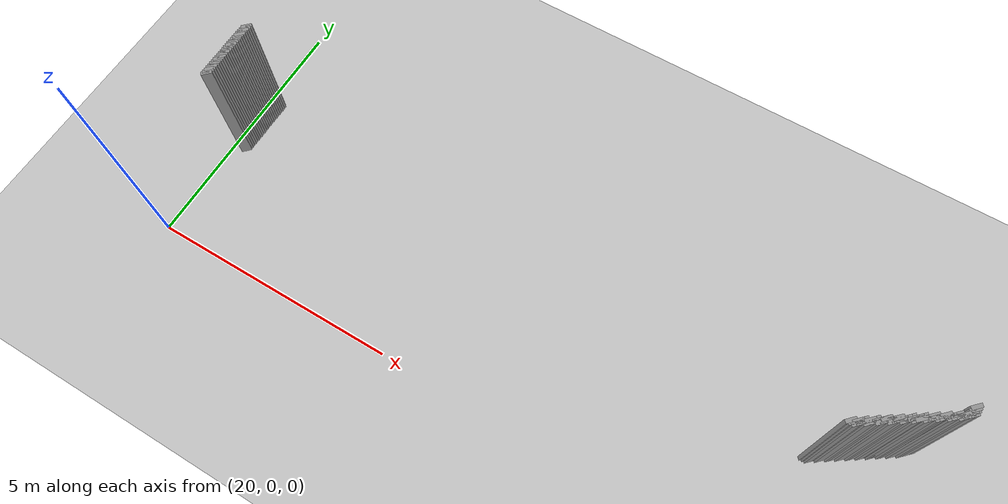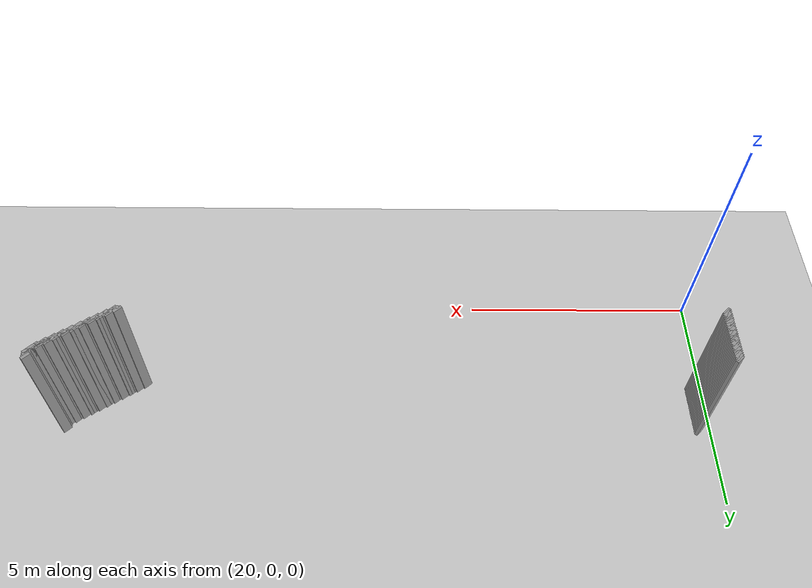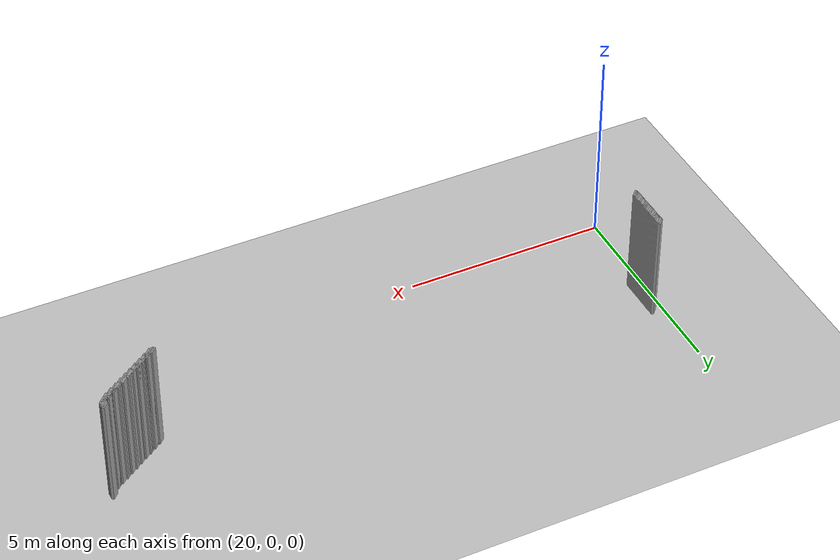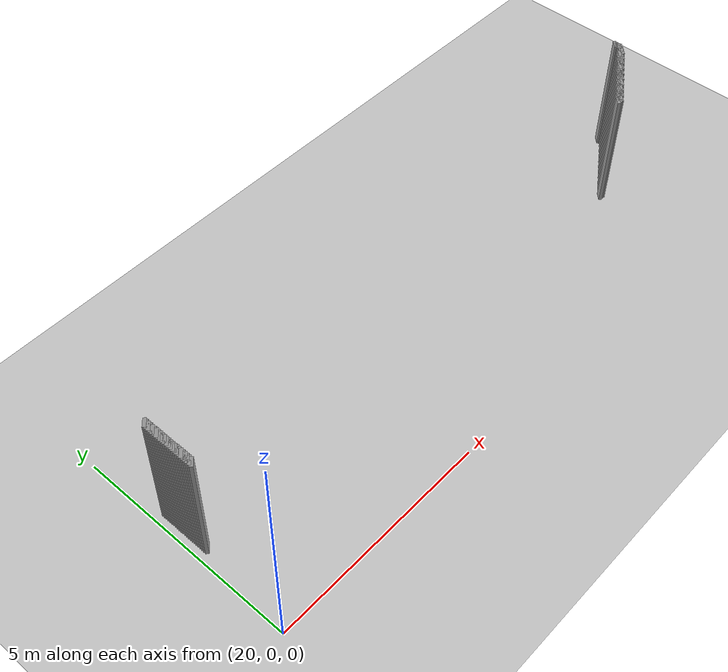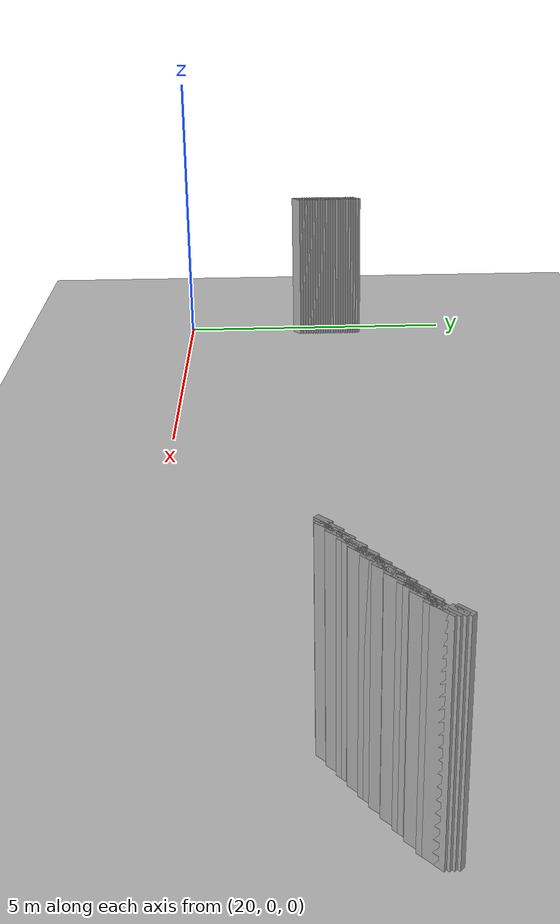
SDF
<sdf version="1.5">
 <world name="default">
  <include><uri>model://ground_plane</uri></include>
  <include><uri>model://sun</uri></include>
  <model name="grey_wall_4963">
   <static>1</static>
   <link name="link">
    <pose>33.95 3.35  1.4 0 0 -0.785398163397</pose>
    <collision name="collision"><geometry><box><size>0.0707106781187 .2  2.8</size></box></geometry></collision>
    <visual name="visual">
     <cast_shadows>0</cast_shadows>
     <geometry><box><size>0.0707106781187 .2  2.8</size></box></geometry>
     <material>
      <script>
       <uri>model://grey_wall/materials/scripts</uri>
       <uri>model://grey_wall/materials/textures</uri>
       <name>vrc/grey_wall</name>
      </script>
     </material>
    </visual>
   </link>
  </model>
  <model name="grey_wall_4964">
   <static>1</static>
   <link name="link">
    <pose>20.25 3.3  1.4 0 0 -0.785398163397</pose>
    <collision name="collision"><geometry><box><size>0.0707106781187 .2  2.8</size></box></geometry></collision>
    <visual name="visual">
     <cast_shadows>0</cast_shadows>
     <geometry><box><size>0.0707106781187 .2  2.8</size></box></geometry>
     <material>
      <script>
       <uri>model://grey_wall/materials/scripts</uri>
       <uri>model://grey_wall/materials/textures</uri>
       <name>vrc/grey_wall</name>
      </script>
     </material>
    </visual>
   </link>
  </model>
  <model name="grey_wall_4965">
   <static>1</static>
   <link name="link">
    <pose>33.95 3.3  1.4 0 0 -0.785398163397</pose>
    <collision name="collision"><geometry><box><size>0.0707106781187 .2  2.8</size></box></geometry></collision>
    <visual name="visual">
     <cast_shadows>0</cast_shadows>
     <geometry><box><size>0.0707106781187 .2  2.8</size></box></geometry>
     <material>
      <script>
       <uri>model://grey_wall/materials/scripts</uri>
       <uri>model://grey_wall/materials/textures</uri>
       <name>vrc/grey_wall</name>
      </script>
     </material>
    </visual>
   </link>
  </model>
  <model name="grey_wall_4966">
   <static>1</static>
   <link name="link">
    <pose>20.25 3.25  1.4 0 0 -0.785398163397</pose>
    <collision name="collision"><geometry><box><size>0.0707106781187 .2  2.8</size></box></geometry></collision>
    <visual name="visual">
     <cast_shadows>0</cast_shadows>
     <geometry><box><size>0.0707106781187 .2  2.8</size></box></geometry>
     <material>
      <script>
       <uri>model://grey_wall/materials/scripts</uri>
       <uri>model://grey_wall/materials/textures</uri>
       <name>vrc/grey_wall</name>
      </script>
     </material>
    </visual>
   </link>
  </model>
  <model name="grey_wall_4967">
   <static>1</static>
   <link name="link">
    <pose>33.95 3.25  1.4 0 0 -0.785398163397</pose>
    <collision name="collision"><geometry><box><size>0.0707106781187 .2  2.8</size></box></geometry></collision>
    <visual name="visual">
     <cast_shadows>0</cast_shadows>
     <geometry><box><size>0.0707106781187 .2  2.8</size></box></geometry>
     <material>
      <script>
       <uri>model://grey_wall/materials/scripts</uri>
       <uri>model://grey_wall/materials/textures</uri>
       <name>vrc/grey_wall</name>
      </script>
     </material>
    </visual>
   </link>
  </model>
  <model name="grey_wall_4968">
   <static>1</static>
   <link name="link">
    <pose>20.25 3.2  1.4 0 0 -0.785398163397</pose>
    <collision name="collision"><geometry><box><size>0.0707106781187 .2  2.8</size></box></geometry></collision>
    <visual name="visual">
     <cast_shadows>0</cast_shadows>
     <geometry><box><size>0.0707106781187 .2  2.8</size></box></geometry>
     <material>
      <script>
       <uri>model://grey_wall/materials/scripts</uri>
       <uri>model://grey_wall/materials/textures</uri>
       <name>vrc/grey_wall</name>
      </script>
     </material>
    </visual>
   </link>
  </model>
  <model name="grey_wall_4969">
   <static>1</static>
   <link name="link">
    <pose>33.9 3.2  1.4 0 0 -0.785398163397</pose>
    <collision name="collision"><geometry><box><size>0.0707106781187 .2  2.8</size></box></geometry></collision>
    <visual name="visual">
     <cast_shadows>0</cast_shadows>
     <geometry><box><size>0.0707106781187 .2  2.8</size></box></geometry>
     <material>
      <script>
       <uri>model://grey_wall/materials/scripts</uri>
       <uri>model://grey_wall/materials/textures</uri>
       <name>vrc/grey_wall</name>
      </script>
     </material>
    </visual>
   </link>
  </model>
  <model name="grey_wall_4970">
   <static>1</static>
   <link name="link">
    <pose>33.95 3.2  1.4 0 0 -0.785398163397</pose>
    <collision name="collision"><geometry><box><size>0.0707106781187 .2  2.8</size></box></geometry></collision>
    <visual name="visual">
     <cast_shadows>0</cast_shadows>
     <geometry><box><size>0.0707106781187 .2  2.8</size></box></geometry>
     <material>
      <script>
       <uri>model://grey_wall/materials/scripts</uri>
       <uri>model://grey_wall/materials/textures</uri>
       <name>vrc/grey_wall</name>
      </script>
     </material>
    </visual>
   </link>
  </model>
  <model name="grey_wall_4971">
   <static>1</static>
   <link name="link">
    <pose>20.25 3.15  1.4 0 0 -0.785398163397</pose>
    <collision name="collision"><geometry><box><size>0.0707106781187 .2  2.8</size></box></geometry></collision>
    <visual name="visual">
     <cast_shadows>0</cast_shadows>
     <geometry><box><size>0.0707106781187 .2  2.8</size></box></geometry>
     <material>
      <script>
       <uri>model://grey_wall/materials/scripts</uri>
       <uri>model://grey_wall/materials/textures</uri>
       <name>vrc/grey_wall</name>
      </script>
     </material>
    </visual>
   </link>
  </model>
  <model name="grey_wall_4972">
   <static>1</static>
   <link name="link">
    <pose>33.85 3.15  1.4 0 0 -0.785398163397</pose>
    <collision name="collision"><geometry><box><size>0.0707106781187 .2  2.8</size></box></geometry></collision>
    <visual name="visual">
     <cast_shadows>0</cast_shadows>
     <geometry><box><size>0.0707106781187 .2  2.8</size></box></geometry>
     <material>
      <script>
       <uri>model://grey_wall/materials/scripts</uri>
       <uri>model://grey_wall/materials/textures</uri>
       <name>vrc/grey_wall</name>
      </script>
     </material>
    </visual>
   </link>
  </model>
  <model name="grey_wall_4973">
   <static>1</static>
   <link name="link">
    <pose>33.9 3.15  1.4 0 0 -0.785398163397</pose>
    <collision name="collision"><geometry><box><size>0.0707106781187 .2  2.8</size></box></geometry></collision>
    <visual name="visual">
     <cast_shadows>0</cast_shadows>
     <geometry><box><size>0.0707106781187 .2  2.8</size></box></geometry>
     <material>
      <script>
       <uri>model://grey_wall/materials/scripts</uri>
       <uri>model://grey_wall/materials/textures</uri>
       <name>vrc/grey_wall</name>
      </script>
     </material>
    </visual>
   </link>
  </model>
  <model name="grey_wall_4974">
   <static>1</static>
   <link name="link">
    <pose>20.25 3.1  1.4 0 0 -0.785398163397</pose>
    <collision name="collision"><geometry><box><size>0.0707106781187 .2  2.8</size></box></geometry></collision>
    <visual name="visual">
     <cast_shadows>0</cast_shadows>
     <geometry><box><size>0.0707106781187 .2  2.8</size></box></geometry>
     <material>
      <script>
       <uri>model://grey_wall/materials/scripts</uri>
       <uri>model://grey_wall/materials/textures</uri>
       <name>vrc/grey_wall</name>
      </script>
     </material>
    </visual>
   </link>
  </model>
  <model name="grey_wall_4975">
   <static>1</static>
   <link name="link">
    <pose>33.75 3.1  1.4 0 0 -0.785398163397</pose>
    <collision name="collision"><geometry><box><size>0.0707106781187 .2  2.8</size></box></geometry></collision>
    <visual name="visual">
     <cast_shadows>0</cast_shadows>
     <geometry><box><size>0.0707106781187 .2  2.8</size></box></geometry>
     <material>
      <script>
       <uri>model://grey_wall/materials/scripts</uri>
       <uri>model://grey_wall/materials/textures</uri>
       <name>vrc/grey_wall</name>
      </script>
     </material>
    </visual>
   </link>
  </model>
  <model name="grey_wall_4976">
   <static>1</static>
   <link name="link">
    <pose>33.8 3.1  1.4 0 0 -0.785398163397</pose>
    <collision name="collision"><geometry><box><size>0.0707106781187 .2  2.8</size></box></geometry></collision>
    <visual name="visual">
     <cast_shadows>0</cast_shadows>
     <geometry><box><size>0.0707106781187 .2  2.8</size></box></geometry>
     <material>
      <script>
       <uri>model://grey_wall/materials/scripts</uri>
       <uri>model://grey_wall/materials/textures</uri>
       <name>vrc/grey_wall</name>
      </script>
     </material>
    </visual>
   </link>
  </model>
  <model name="grey_wall_4977">
   <static>1</static>
   <link name="link">
    <pose>33.85 3.1  1.4 0 0 -0.785398163397</pose>
    <collision name="collision"><geometry><box><size>0.0707106781187 .2  2.8</size></box></geometry></collision>
    <visual name="visual">
     <cast_shadows>0</cast_shadows>
     <geometry><box><size>0.0707106781187 .2  2.8</size></box></geometry>
     <material>
      <script>
       <uri>model://grey_wall/materials/scripts</uri>
       <uri>model://grey_wall/materials/textures</uri>
       <name>vrc/grey_wall</name>
      </script>
     </material>
    </visual>
   </link>
  </model>
  <model name="grey_wall_4978">
   <static>1</static>
   <link name="link">
    <pose>20.25 3.05  1.4 0 0 -0.785398163397</pose>
    <collision name="collision"><geometry><box><size>0.0707106781187 .2  2.8</size></box></geometry></collision>
    <visual name="visual">
     <cast_shadows>0</cast_shadows>
     <geometry><box><size>0.0707106781187 .2  2.8</size></box></geometry>
     <material>
      <script>
       <uri>model://grey_wall/materials/scripts</uri>
       <uri>model://grey_wall/materials/textures</uri>
       <name>vrc/grey_wall</name>
      </script>
     </material>
    </visual>
   </link>
  </model>
  <model name="grey_wall_4979">
   <static>1</static>
   <link name="link">
    <pose>33.7 3.05  1.4 0 0 -0.785398163397</pose>
    <collision name="collision"><geometry><box><size>0.0707106781187 .2  2.8</size></box></geometry></collision>
    <visual name="visual">
     <cast_shadows>0</cast_shadows>
     <geometry><box><size>0.0707106781187 .2  2.8</size></box></geometry>
     <material>
      <script>
       <uri>model://grey_wall/materials/scripts</uri>
       <uri>model://grey_wall/materials/textures</uri>
       <name>vrc/grey_wall</name>
      </script>
     </material>
    </visual>
   </link>
  </model>
  <model name="grey_wall_4980">
   <static>1</static>
   <link name="link">
    <pose>33.75 3.05  1.4 0 0 -0.785398163397</pose>
    <collision name="collision"><geometry><box><size>0.0707106781187 .2  2.8</size></box></geometry></collision>
    <visual name="visual">
     <cast_shadows>0</cast_shadows>
     <geometry><box><size>0.0707106781187 .2  2.8</size></box></geometry>
     <material>
      <script>
       <uri>model://grey_wall/materials/scripts</uri>
       <uri>model://grey_wall/materials/textures</uri>
       <name>vrc/grey_wall</name>
      </script>
     </material>
    </visual>
   </link>
  </model>
  <model name="grey_wall_4981">
   <static>1</static>
   <link name="link">
    <pose>20.25 3.0  1.4 0 0 -0.785398163397</pose>
    <collision name="collision"><geometry><box><size>0.0707106781187 .2  2.8</size></box></geometry></collision>
    <visual name="visual">
     <cast_shadows>0</cast_shadows>
     <geometry><box><size>0.0707106781187 .2  2.8</size></box></geometry>
     <material>
      <script>
       <uri>model://grey_wall/materials/scripts</uri>
       <uri>model://grey_wall/materials/textures</uri>
       <name>vrc/grey_wall</name>
      </script>
     </material>
    </visual>
   </link>
  </model>
  <model name="grey_wall_4982">
   <static>1</static>
   <link name="link">
    <pose>33.6 3.0  1.4 0 0 -0.785398163397</pose>
    <collision name="collision"><geometry><box><size>0.0707106781187 .2  2.8</size></box></geometry></collision>
    <visual name="visual">
     <cast_shadows>0</cast_shadows>
     <geometry><box><size>0.0707106781187 .2  2.8</size></box></geometry>
     <material>
      <script>
       <uri>model://grey_wall/materials/scripts</uri>
       <uri>model://grey_wall/materials/textures</uri>
       <name>vrc/grey_wall</name>
      </script>
     </material>
    </visual>
   </link>
  </model>
  <model name="grey_wall_4983">
   <static>1</static>
   <link name="link">
    <pose>33.65 3.0  1.4 0 0 -0.785398163397</pose>
    <collision name="collision"><geometry><box><size>0.0707106781187 .2  2.8</size></box></geometry></collision>
    <visual name="visual">
     <cast_shadows>0</cast_shadows>
     <geometry><box><size>0.0707106781187 .2  2.8</size></box></geometry>
     <material>
      <script>
       <uri>model://grey_wall/materials/scripts</uri>
       <uri>model://grey_wall/materials/textures</uri>
       <name>vrc/grey_wall</name>
      </script>
     </material>
    </visual>
   </link>
  </model>
  <model name="grey_wall_4984">
   <static>1</static>
   <link name="link">
    <pose>33.7 3.0  1.4 0 0 -0.785398163397</pose>
    <collision name="collision"><geometry><box><size>0.0707106781187 .2  2.8</size></box></geometry></collision>
    <visual name="visual">
     <cast_shadows>0</cast_shadows>
     <geometry><box><size>0.0707106781187 .2  2.8</size></box></geometry>
     <material>
      <script>
       <uri>model://grey_wall/materials/scripts</uri>
       <uri>model://grey_wall/materials/textures</uri>
       <name>vrc/grey_wall</name>
      </script>
     </material>
    </visual>
   </link>
  </model>
  <model name="grey_wall_4985">
   <static>1</static>
   <link name="link">
    <pose>20.25 2.95  1.4 0 0 -0.785398163397</pose>
    <collision name="collision"><geometry><box><size>0.0707106781187 .2  2.8</size></box></geometry></collision>
    <visual name="visual">
     <cast_shadows>0</cast_shadows>
     <geometry><box><size>0.0707106781187 .2  2.8</size></box></geometry>
     <material>
      <script>
       <uri>model://grey_wall/materials/scripts</uri>
       <uri>model://grey_wall/materials/textures</uri>
       <name>vrc/grey_wall</name>
      </script>
     </material>
    </visual>
   </link>
  </model>
  <model name="grey_wall_4986">
   <static>1</static>
   <link name="link">
    <pose>33.55 2.95  1.4 0 0 -0.785398163397</pose>
    <collision name="collision"><geometry><box><size>0.0707106781187 .2  2.8</size></box></geometry></collision>
    <visual name="visual">
     <cast_shadows>0</cast_shadows>
     <geometry><box><size>0.0707106781187 .2  2.8</size></box></geometry>
     <material>
      <script>
       <uri>model://grey_wall/materials/scripts</uri>
       <uri>model://grey_wall/materials/textures</uri>
       <name>vrc/grey_wall</name>
      </script>
     </material>
    </visual>
   </link>
  </model>
  <model name="grey_wall_4987">
   <static>1</static>
   <link name="link">
    <pose>33.6 2.95  1.4 0 0 -0.785398163397</pose>
    <collision name="collision"><geometry><box><size>0.0707106781187 .2  2.8</size></box></geometry></collision>
    <visual name="visual">
     <cast_shadows>0</cast_shadows>
     <geometry><box><size>0.0707106781187 .2  2.8</size></box></geometry>
     <material>
      <script>
       <uri>model://grey_wall/materials/scripts</uri>
       <uri>model://grey_wall/materials/textures</uri>
       <name>vrc/grey_wall</name>
      </script>
     </material>
    </visual>
   </link>
  </model>
  <model name="grey_wall_4988">
   <static>1</static>
   <link name="link">
    <pose>20.25 2.9  1.4 0 0 -0.785398163397</pose>
    <collision name="collision"><geometry><box><size>0.0707106781187 .2  2.8</size></box></geometry></collision>
    <visual name="visual">
     <cast_shadows>0</cast_shadows>
     <geometry><box><size>0.0707106781187 .2  2.8</size></box></geometry>
     <material>
      <script>
       <uri>model://grey_wall/materials/scripts</uri>
       <uri>model://grey_wall/materials/textures</uri>
       <name>vrc/grey_wall</name>
      </script>
     </material>
    </visual>
   </link>
  </model>
  <model name="grey_wall_4989">
   <static>1</static>
   <link name="link">
    <pose>33.45 2.9  1.4 0 0 -0.785398163397</pose>
    <collision name="collision"><geometry><box><size>0.0707106781187 .2  2.8</size></box></geometry></collision>
    <visual name="visual">
     <cast_shadows>0</cast_shadows>
     <geometry><box><size>0.0707106781187 .2  2.8</size></box></geometry>
     <material>
      <script>
       <uri>model://grey_wall/materials/scripts</uri>
       <uri>model://grey_wall/materials/textures</uri>
       <name>vrc/grey_wall</name>
      </script>
     </material>
    </visual>
   </link>
  </model>
  <model name="grey_wall_4990">
   <static>1</static>
   <link name="link">
    <pose>33.5 2.9  1.4 0 0 -0.785398163397</pose>
    <collision name="collision"><geometry><box><size>0.0707106781187 .2  2.8</size></box></geometry></collision>
    <visual name="visual">
     <cast_shadows>0</cast_shadows>
     <geometry><box><size>0.0707106781187 .2  2.8</size></box></geometry>
     <material>
      <script>
       <uri>model://grey_wall/materials/scripts</uri>
       <uri>model://grey_wall/materials/textures</uri>
       <name>vrc/grey_wall</name>
      </script>
     </material>
    </visual>
   </link>
  </model>
  <model name="grey_wall_4991">
   <static>1</static>
   <link name="link">
    <pose>33.55 2.9  1.4 0 0 -0.785398163397</pose>
    <collision name="collision"><geometry><box><size>0.0707106781187 .2  2.8</size></box></geometry></collision>
    <visual name="visual">
     <cast_shadows>0</cast_shadows>
     <geometry><box><size>0.0707106781187 .2  2.8</size></box></geometry>
     <material>
      <script>
       <uri>model://grey_wall/materials/scripts</uri>
       <uri>model://grey_wall/materials/textures</uri>
       <name>vrc/grey_wall</name>
      </script>
     </material>
    </visual>
   </link>
  </model>
  <model name="grey_wall_4992">
   <static>1</static>
   <link name="link">
    <pose>20.25 2.85  1.4 0 0 -0.785398163397</pose>
    <collision name="collision"><geometry><box><size>0.0707106781187 .2  2.8</size></box></geometry></collision>
    <visual name="visual">
     <cast_shadows>0</cast_shadows>
     <geometry><box><size>0.0707106781187 .2  2.8</size></box></geometry>
     <material>
      <script>
       <uri>model://grey_wall/materials/scripts</uri>
       <uri>model://grey_wall/materials/textures</uri>
       <name>vrc/grey_wall</name>
      </script>
     </material>
    </visual>
   </link>
  </model>
  <model name="grey_wall_4993">
   <static>1</static>
   <link name="link">
    <pose>33.4 2.85  1.4 0 0 -0.785398163397</pose>
    <collision name="collision"><geometry><box><size>0.0707106781187 .2  2.8</size></box></geometry></collision>
    <visual name="visual">
     <cast_shadows>0</cast_shadows>
     <geometry><box><size>0.0707106781187 .2  2.8</size></box></geometry>
     <material>
      <script>
       <uri>model://grey_wall/materials/scripts</uri>
       <uri>model://grey_wall/materials/textures</uri>
       <name>vrc/grey_wall</name>
      </script>
     </material>
    </visual>
   </link>
  </model>
  <model name="grey_wall_4994">
   <static>1</static>
   <link name="link">
    <pose>33.45 2.85  1.4 0 0 -0.785398163397</pose>
    <collision name="collision"><geometry><box><size>0.0707106781187 .2  2.8</size></box></geometry></collision>
    <visual name="visual">
     <cast_shadows>0</cast_shadows>
     <geometry><box><size>0.0707106781187 .2  2.8</size></box></geometry>
     <material>
      <script>
       <uri>model://grey_wall/materials/scripts</uri>
       <uri>model://grey_wall/materials/textures</uri>
       <name>vrc/grey_wall</name>
      </script>
     </material>
    </visual>
   </link>
  </model>
  <model name="grey_wall_4995">
   <static>1</static>
   <link name="link">
    <pose>20.25 2.8  1.4 0 0 -0.785398163397</pose>
    <collision name="collision"><geometry><box><size>0.0707106781187 .2  2.8</size></box></geometry></collision>
    <visual name="visual">
     <cast_shadows>0</cast_shadows>
     <geometry><box><size>0.0707106781187 .2  2.8</size></box></geometry>
     <material>
      <script>
       <uri>model://grey_wall/materials/scripts</uri>
       <uri>model://grey_wall/materials/textures</uri>
       <name>vrc/grey_wall</name>
      </script>
     </material>
    </visual>
   </link>
  </model>
  <model name="grey_wall_4996">
   <static>1</static>
   <link name="link">
    <pose>33.3 2.8  1.4 0 0 -0.785398163397</pose>
    <collision name="collision"><geometry><box><size>0.0707106781187 .2  2.8</size></box></geometry></collision>
    <visual name="visual">
     <cast_shadows>0</cast_shadows>
     <geometry><box><size>0.0707106781187 .2  2.8</size></box></geometry>
     <material>
      <script>
       <uri>model://grey_wall/materials/scripts</uri>
       <uri>model://grey_wall/materials/textures</uri>
       <name>vrc/grey_wall</name>
      </script>
     </material>
    </visual>
   </link>
  </model>
  <model name="grey_wall_4997">
   <static>1</static>
   <link name="link">
    <pose>33.35 2.8  1.4 0 0 -0.785398163397</pose>
    <collision name="collision"><geometry><box><size>0.0707106781187 .2  2.8</size></box></geometry></collision>
    <visual name="visual">
     <cast_shadows>0</cast_shadows>
     <geometry><box><size>0.0707106781187 .2  2.8</size></box></geometry>
     <material>
      <script>
       <uri>model://grey_wall/materials/scripts</uri>
       <uri>model://grey_wall/materials/textures</uri>
       <name>vrc/grey_wall</name>
      </script>
     </material>
    </visual>
   </link>
  </model>
  <model name="grey_wall_4998">
   <static>1</static>
   <link name="link">
    <pose>33.4 2.8  1.4 0 0 -0.785398163397</pose>
    <collision name="collision"><geometry><box><size>0.0707106781187 .2  2.8</size></box></geometry></collision>
    <visual name="visual">
     <cast_shadows>0</cast_shadows>
     <geometry><box><size>0.0707106781187 .2  2.8</size></box></geometry>
     <material>
      <script>
       <uri>model://grey_wall/materials/scripts</uri>
       <uri>model://grey_wall/materials/textures</uri>
       <name>vrc/grey_wall</name>
      </script>
     </material>
    </visual>
   </link>
  </model>
  <model name="grey_wall_4999">
   <static>1</static>
   <link name="link">
    <pose>20.25 2.75  1.4 0 0 -0.785398163397</pose>
    <collision name="collision"><geometry><box><size>0.0707106781187 .2  2.8</size></box></geometry></collision>
    <visual name="visual">
     <cast_shadows>0</cast_shadows>
     <geometry><box><size>0.0707106781187 .2  2.8</size></box></geometry>
     <material>
      <script>
       <uri>model://grey_wall/materials/scripts</uri>
       <uri>model://grey_wall/materials/textures</uri>
       <name>vrc/grey_wall</name>
      </script>
     </material>
    </visual>
   </link>
  </model>
  <model name="grey_wall_5000">
   <static>1</static>
   <link name="link">
    <pose>33.25 2.75  1.4 0 0 -0.785398163397</pose>
    <collision name="collision"><geometry><box><size>0.0707106781187 .2  2.8</size></box></geometry></collision>
    <visual name="visual">
     <cast_shadows>0</cast_shadows>
     <geometry><box><size>0.0707106781187 .2  2.8</size></box></geometry>
     <material>
      <script>
       <uri>model://grey_wall/materials/scripts</uri>
       <uri>model://grey_wall/materials/textures</uri>
       <name>vrc/grey_wall</name>
      </script>
     </material>
    </visual>
   </link>
  </model>
  <model name="grey_wall_5001">
   <static>1</static>
   <link name="link">
    <pose>33.3 2.75  1.4 0 0 -0.785398163397</pose>
    <collision name="collision"><geometry><box><size>0.0707106781187 .2  2.8</size></box></geometry></collision>
    <visual name="visual">
     <cast_shadows>0</cast_shadows>
     <geometry><box><size>0.0707106781187 .2  2.8</size></box></geometry>
     <material>
      <script>
       <uri>model://grey_wall/materials/scripts</uri>
       <uri>model://grey_wall/materials/textures</uri>
       <name>vrc/grey_wall</name>
      </script>
     </material>
    </visual>
   </link>
  </model>
  <model name="grey_wall_5002">
   <static>1</static>
   <link name="link">
    <pose>20.25 2.7  1.4 0 0 -0.785398163397</pose>
    <collision name="collision"><geometry><box><size>0.0707106781187 .2  2.8</size></box></geometry></collision>
    <visual name="visual">
     <cast_shadows>0</cast_shadows>
     <geometry><box><size>0.0707106781187 .2  2.8</size></box></geometry>
     <material>
      <script>
       <uri>model://grey_wall/materials/scripts</uri>
       <uri>model://grey_wall/materials/textures</uri>
       <name>vrc/grey_wall</name>
      </script>
     </material>
    </visual>
   </link>
  </model>
  <model name="grey_wall_5003">
   <static>1</static>
   <link name="link">
    <pose>33.15 2.7  1.4 0 0 -0.785398163397</pose>
    <collision name="collision"><geometry><box><size>0.0707106781187 .2  2.8</size></box></geometry></collision>
    <visual name="visual">
     <cast_shadows>0</cast_shadows>
     <geometry><box><size>0.0707106781187 .2  2.8</size></box></geometry>
     <material>
      <script>
       <uri>model://grey_wall/materials/scripts</uri>
       <uri>model://grey_wall/materials/textures</uri>
       <name>vrc/grey_wall</name>
      </script>
     </material>
    </visual>
   </link>
  </model>
  <model name="grey_wall_5004">
   <static>1</static>
   <link name="link">
    <pose>33.2 2.7  1.4 0 0 -0.785398163397</pose>
    <collision name="collision"><geometry><box><size>0.0707106781187 .2  2.8</size></box></geometry></collision>
    <visual name="visual">
     <cast_shadows>0</cast_shadows>
     <geometry><box><size>0.0707106781187 .2  2.8</size></box></geometry>
     <material>
      <script>
       <uri>model://grey_wall/materials/scripts</uri>
       <uri>model://grey_wall/materials/textures</uri>
       <name>vrc/grey_wall</name>
      </script>
     </material>
    </visual>
   </link>
  </model>
  <model name="grey_wall_5005">
   <static>1</static>
   <link name="link">
    <pose>33.25 2.7  1.4 0 0 -0.785398163397</pose>
    <collision name="collision"><geometry><box><size>0.0707106781187 .2  2.8</size></box></geometry></collision>
    <visual name="visual">
     <cast_shadows>0</cast_shadows>
     <geometry><box><size>0.0707106781187 .2  2.8</size></box></geometry>
     <material>
      <script>
       <uri>model://grey_wall/materials/scripts</uri>
       <uri>model://grey_wall/materials/textures</uri>
       <name>vrc/grey_wall</name>
      </script>
     </material>
    </visual>
   </link>
  </model>
  <model name="grey_wall_5006">
   <static>1</static>
   <link name="link">
    <pose>20.25 2.65  1.4 0 0 -0.785398163397</pose>
    <collision name="collision"><geometry><box><size>0.0707106781187 .2  2.8</size></box></geometry></collision>
    <visual name="visual">
     <cast_shadows>0</cast_shadows>
     <geometry><box><size>0.0707106781187 .2  2.8</size></box></geometry>
     <material>
      <script>
       <uri>model://grey_wall/materials/scripts</uri>
       <uri>model://grey_wall/materials/textures</uri>
       <name>vrc/grey_wall</name>
      </script>
     </material>
    </visual>
   </link>
  </model>
  <model name="grey_wall_5007">
   <static>1</static>
   <link name="link">
    <pose>33.1 2.65  1.4 0 0 -0.785398163397</pose>
    <collision name="collision"><geometry><box><size>0.0707106781187 .2  2.8</size></box></geometry></collision>
    <visual name="visual">
     <cast_shadows>0</cast_shadows>
     <geometry><box><size>0.0707106781187 .2  2.8</size></box></geometry>
     <material>
      <script>
       <uri>model://grey_wall/materials/scripts</uri>
       <uri>model://grey_wall/materials/textures</uri>
       <name>vrc/grey_wall</name>
      </script>
     </material>
    </visual>
   </link>
  </model>
  <model name="grey_wall_5008">
   <static>1</static>
   <link name="link">
    <pose>33.15 2.65  1.4 0 0 -0.785398163397</pose>
    <collision name="collision"><geometry><box><size>0.0707106781187 .2  2.8</size></box></geometry></collision>
    <visual name="visual">
     <cast_shadows>0</cast_shadows>
     <geometry><box><size>0.0707106781187 .2  2.8</size></box></geometry>
     <material>
      <script>
       <uri>model://grey_wall/materials/scripts</uri>
       <uri>model://grey_wall/materials/textures</uri>
       <name>vrc/grey_wall</name>
      </script>
     </material>
    </visual>
   </link>
  </model>
  <model name="grey_wall_5009">
   <static>1</static>
   <link name="link">
    <pose>20.25 2.6  1.4 0 0 -0.785398163397</pose>
    <collision name="collision"><geometry><box><size>0.0707106781187 .2  2.8</size></box></geometry></collision>
    <visual name="visual">
     <cast_shadows>0</cast_shadows>
     <geometry><box><size>0.0707106781187 .2  2.8</size></box></geometry>
     <material>
      <script>
       <uri>model://grey_wall/materials/scripts</uri>
       <uri>model://grey_wall/materials/textures</uri>
       <name>vrc/grey_wall</name>
      </script>
     </material>
    </visual>
   </link>
  </model>
  <model name="grey_wall_5010">
   <static>1</static>
   <link name="link">
    <pose>33.0 2.6  1.4 0 0 -0.785398163397</pose>
    <collision name="collision"><geometry><box><size>0.0707106781187 .2  2.8</size></box></geometry></collision>
    <visual name="visual">
     <cast_shadows>0</cast_shadows>
     <geometry><box><size>0.0707106781187 .2  2.8</size></box></geometry>
     <material>
      <script>
       <uri>model://grey_wall/materials/scripts</uri>
       <uri>model://grey_wall/materials/textures</uri>
       <name>vrc/grey_wall</name>
      </script>
     </material>
    </visual>
   </link>
  </model>
  <model name="grey_wall_5011">
   <static>1</static>
   <link name="link">
    <pose>33.05 2.6  1.4 0 0 -0.785398163397</pose>
    <collision name="collision"><geometry><box><size>0.0707106781187 .2  2.8</size></box></geometry></collision>
    <visual name="visual">
     <cast_shadows>0</cast_shadows>
     <geometry><box><size>0.0707106781187 .2  2.8</size></box></geometry>
     <material>
      <script>
       <uri>model://grey_wall/materials/scripts</uri>
       <uri>model://grey_wall/materials/textures</uri>
       <name>vrc/grey_wall</name>
      </script>
     </material>
    </visual>
   </link>
  </model>
  <model name="grey_wall_5012">
   <static>1</static>
   <link name="link">
    <pose>33.1 2.6  1.4 0 0 -0.785398163397</pose>
    <collision name="collision"><geometry><box><size>0.0707106781187 .2  2.8</size></box></geometry></collision>
    <visual name="visual">
     <cast_shadows>0</cast_shadows>
     <geometry><box><size>0.0707106781187 .2  2.8</size></box></geometry>
     <material>
      <script>
       <uri>model://grey_wall/materials/scripts</uri>
       <uri>model://grey_wall/materials/textures</uri>
       <name>vrc/grey_wall</name>
      </script>
     </material>
    </visual>
   </link>
  </model>
  <model name="grey_wall_5013">
   <static>1</static>
   <link name="link">
    <pose>20.25 2.55  1.4 0 0 -0.785398163397</pose>
    <collision name="collision"><geometry><box><size>0.0707106781187 .2  2.8</size></box></geometry></collision>
    <visual name="visual">
     <cast_shadows>0</cast_shadows>
     <geometry><box><size>0.0707106781187 .2  2.8</size></box></geometry>
     <material>
      <script>
       <uri>model://grey_wall/materials/scripts</uri>
       <uri>model://grey_wall/materials/textures</uri>
       <name>vrc/grey_wall</name>
      </script>
     </material>
    </visual>
   </link>
  </model>
  <model name="grey_wall_5014">
   <static>1</static>
   <link name="link">
    <pose>32.95 2.55  1.4 0 0 -0.785398163397</pose>
    <collision name="collision"><geometry><box><size>0.0707106781187 .2  2.8</size></box></geometry></collision>
    <visual name="visual">
     <cast_shadows>0</cast_shadows>
     <geometry><box><size>0.0707106781187 .2  2.8</size></box></geometry>
     <material>
      <script>
       <uri>model://grey_wall/materials/scripts</uri>
       <uri>model://grey_wall/materials/textures</uri>
       <name>vrc/grey_wall</name>
      </script>
     </material>
    </visual>
   </link>
  </model>
  <model name="grey_wall_5015">
   <static>1</static>
   <link name="link">
    <pose>33.0 2.55  1.4 0 0 -0.785398163397</pose>
    <collision name="collision"><geometry><box><size>0.0707106781187 .2  2.8</size></box></geometry></collision>
    <visual name="visual">
     <cast_shadows>0</cast_shadows>
     <geometry><box><size>0.0707106781187 .2  2.8</size></box></geometry>
     <material>
      <script>
       <uri>model://grey_wall/materials/scripts</uri>
       <uri>model://grey_wall/materials/textures</uri>
       <name>vrc/grey_wall</name>
      </script>
     </material>
    </visual>
   </link>
  </model>
  <model name="grey_wall_5016">
   <static>1</static>
   <link name="link">
    <pose>20.25 2.5  1.4 0 0 -0.785398163397</pose>
    <collision name="collision"><geometry><box><size>0.0707106781187 .2  2.8</size></box></geometry></collision>
    <visual name="visual">
     <cast_shadows>0</cast_shadows>
     <geometry><box><size>0.0707106781187 .2  2.8</size></box></geometry>
     <material>
      <script>
       <uri>model://grey_wall/materials/scripts</uri>
       <uri>model://grey_wall/materials/textures</uri>
       <name>vrc/grey_wall</name>
      </script>
     </material>
    </visual>
   </link>
  </model>
  <model name="grey_wall_5017">
   <static>1</static>
   <link name="link">
    <pose>32.85 2.5  1.4 0 0 -0.785398163397</pose>
    <collision name="collision"><geometry><box><size>0.0707106781187 .2  2.8</size></box></geometry></collision>
    <visual name="visual">
     <cast_shadows>0</cast_shadows>
     <geometry><box><size>0.0707106781187 .2  2.8</size></box></geometry>
     <material>
      <script>
       <uri>model://grey_wall/materials/scripts</uri>
       <uri>model://grey_wall/materials/textures</uri>
       <name>vrc/grey_wall</name>
      </script>
     </material>
    </visual>
   </link>
  </model>
  <model name="grey_wall_5018">
   <static>1</static>
   <link name="link">
    <pose>32.9 2.5  1.4 0 0 -0.785398163397</pose>
    <collision name="collision"><geometry><box><size>0.0707106781187 .2  2.8</size></box></geometry></collision>
    <visual name="visual">
     <cast_shadows>0</cast_shadows>
     <geometry><box><size>0.0707106781187 .2  2.8</size></box></geometry>
     <material>
      <script>
       <uri>model://grey_wall/materials/scripts</uri>
       <uri>model://grey_wall/materials/textures</uri>
       <name>vrc/grey_wall</name>
      </script>
     </material>
    </visual>
   </link>
  </model>
  <model name="grey_wall_5019">
   <static>1</static>
   <link name="link">
    <pose>32.95 2.5  1.4 0 0 -0.785398163397</pose>
    <collision name="collision"><geometry><box><size>0.0707106781187 .2  2.8</size></box></geometry></collision>
    <visual name="visual">
     <cast_shadows>0</cast_shadows>
     <geometry><box><size>0.0707106781187 .2  2.8</size></box></geometry>
     <material>
      <script>
       <uri>model://grey_wall/materials/scripts</uri>
       <uri>model://grey_wall/materials/textures</uri>
       <name>vrc/grey_wall</name>
      </script>
     </material>
    </visual>
   </link>
  </model>
  <model name="grey_wall_5020">
   <static>1</static>
   <link name="link">
    <pose>20.25 2.45  1.4 0 0 -0.785398163397</pose>
    <collision name="collision"><geometry><box><size>0.0707106781187 .2  2.8</size></box></geometry></collision>
    <visual name="visual">
     <cast_shadows>0</cast_shadows>
     <geometry><box><size>0.0707106781187 .2  2.8</size></box></geometry>
     <material>
      <script>
       <uri>model://grey_wall/materials/scripts</uri>
       <uri>model://grey_wall/materials/textures</uri>
       <name>vrc/grey_wall</name>
      </script>
     </material>
    </visual>
   </link>
  </model>
  <model name="grey_wall_5021">
   <static>1</static>
   <link name="link">
    <pose>32.8 2.45  1.4 0 0 -0.785398163397</pose>
    <collision name="collision"><geometry><box><size>0.0707106781187 .2  2.8</size></box></geometry></collision>
    <visual name="visual">
     <cast_shadows>0</cast_shadows>
     <geometry><box><size>0.0707106781187 .2  2.8</size></box></geometry>
     <material>
      <script>
       <uri>model://grey_wall/materials/scripts</uri>
       <uri>model://grey_wall/materials/textures</uri>
       <name>vrc/grey_wall</name>
      </script>
     </material>
    </visual>
   </link>
  </model>
  <model name="grey_wall_5022">
   <static>1</static>
   <link name="link">
    <pose>32.85 2.45  1.4 0 0 -0.785398163397</pose>
    <collision name="collision"><geometry><box><size>0.0707106781187 .2  2.8</size></box></geometry></collision>
    <visual name="visual">
     <cast_shadows>0</cast_shadows>
     <geometry><box><size>0.0707106781187 .2  2.8</size></box></geometry>
     <material>
      <script>
       <uri>model://grey_wall/materials/scripts</uri>
       <uri>model://grey_wall/materials/textures</uri>
       <name>vrc/grey_wall</name>
      </script>
     </material>
    </visual>
   </link>
  </model>
  <model name="grey_wall_5023">
   <static>1</static>
   <link name="link">
    <pose>20.25 2.4  1.4 0 0 -0.785398163397</pose>
    <collision name="collision"><geometry><box><size>0.0707106781187 .2  2.8</size></box></geometry></collision>
    <visual name="visual">
     <cast_shadows>0</cast_shadows>
     <geometry><box><size>0.0707106781187 .2  2.8</size></box></geometry>
     <material>
      <script>
       <uri>model://grey_wall/materials/scripts</uri>
       <uri>model://grey_wall/materials/textures</uri>
       <name>vrc/grey_wall</name>
      </script>
     </material>
    </visual>
   </link>
  </model>
  <model name="grey_wall_5024">
   <static>1</static>
   <link name="link">
    <pose>32.7 2.4  1.4 0 0 -0.785398163397</pose>
    <collision name="collision"><geometry><box><size>0.0707106781187 .2  2.8</size></box></geometry></collision>
    <visual name="visual">
     <cast_shadows>0</cast_shadows>
     <geometry><box><size>0.0707106781187 .2  2.8</size></box></geometry>
     <material>
      <script>
       <uri>model://grey_wall/materials/scripts</uri>
       <uri>model://grey_wall/materials/textures</uri>
       <name>vrc/grey_wall</name>
      </script>
     </material>
    </visual>
   </link>
  </model>
  <model name="grey_wall_5025">
   <static>1</static>
   <link name="link">
    <pose>32.75 2.4  1.4 0 0 -0.785398163397</pose>
    <collision name="collision"><geometry><box><size>0.0707106781187 .2  2.8</size></box></geometry></collision>
    <visual name="visual">
     <cast_shadows>0</cast_shadows>
     <geometry><box><size>0.0707106781187 .2  2.8</size></box></geometry>
     <material>
      <script>
       <uri>model://grey_wall/materials/scripts</uri>
       <uri>model://grey_wall/materials/textures</uri>
       <name>vrc/grey_wall</name>
      </script>
     </material>
    </visual>
   </link>
  </model>
  <model name="grey_wall_5026">
   <static>1</static>
   <link name="link">
    <pose>32.8 2.4  1.4 0 0 -0.785398163397</pose>
    <collision name="collision"><geometry><box><size>0.0707106781187 .2  2.8</size></box></geometry></collision>
    <visual name="visual">
     <cast_shadows>0</cast_shadows>
     <geometry><box><size>0.0707106781187 .2  2.8</size></box></geometry>
     <material>
      <script>
       <uri>model://grey_wall/materials/scripts</uri>
       <uri>model://grey_wall/materials/textures</uri>
       <name>vrc/grey_wall</name>
      </script>
     </material>
    </visual>
   </link>
  </model>
  <model name="grey_wall_5027">
   <static>1</static>
   <link name="link">
    <pose>20.25 2.35  1.4 0 0 -0.785398163397</pose>
    <collision name="collision"><geometry><box><size>0.0707106781187 .2  2.8</size></box></geometry></collision>
    <visual name="visual">
     <cast_shadows>0</cast_shadows>
     <geometry><box><size>0.0707106781187 .2  2.8</size></box></geometry>
     <material>
      <script>
       <uri>model://grey_wall/materials/scripts</uri>
       <uri>model://grey_wall/materials/textures</uri>
       <name>vrc/grey_wall</name>
      </script>
     </material>
    </visual>
   </link>
  </model>
  <model name="grey_wall_5028">
   <static>1</static>
   <link name="link">
    <pose>32.65 2.35  1.4 0 0 -0.785398163397</pose>
    <collision name="collision"><geometry><box><size>0.0707106781187 .2  2.8</size></box></geometry></collision>
    <visual name="visual">
     <cast_shadows>0</cast_shadows>
     <geometry><box><size>0.0707106781187 .2  2.8</size></box></geometry>
     <material>
      <script>
       <uri>model://grey_wall/materials/scripts</uri>
       <uri>model://grey_wall/materials/textures</uri>
       <name>vrc/grey_wall</name>
      </script>
     </material>
    </visual>
   </link>
  </model>
  <model name="grey_wall_5029">
   <static>1</static>
   <link name="link">
    <pose>32.7 2.35  1.4 0 0 -0.785398163397</pose>
    <collision name="collision"><geometry><box><size>0.0707106781187 .2  2.8</size></box></geometry></collision>
    <visual name="visual">
     <cast_shadows>0</cast_shadows>
     <geometry><box><size>0.0707106781187 .2  2.8</size></box></geometry>
     <material>
      <script>
       <uri>model://grey_wall/materials/scripts</uri>
       <uri>model://grey_wall/materials/textures</uri>
       <name>vrc/grey_wall</name>
      </script>
     </material>
    </visual>
   </link>
  </model>
  <model name="grey_wall_5030">
   <static>1</static>
   <link name="link">
    <pose>20.25 2.3  1.4 0 0 -0.785398163397</pose>
    <collision name="collision"><geometry><box><size>0.0707106781187 .2  2.8</size></box></geometry></collision>
    <visual name="visual">
     <cast_shadows>0</cast_shadows>
     <geometry><box><size>0.0707106781187 .2  2.8</size></box></geometry>
     <material>
      <script>
       <uri>model://grey_wall/materials/scripts</uri>
       <uri>model://grey_wall/materials/textures</uri>
       <name>vrc/grey_wall</name>
      </script>
     </material>
    </visual>
   </link>
  </model>
  <model name="grey_wall_5031">
   <static>1</static>
   <link name="link">
    <pose>32.55 2.3  1.4 0 0 -0.785398163397</pose>
    <collision name="collision"><geometry><box><size>0.0707106781187 .2  2.8</size></box></geometry></collision>
    <visual name="visual">
     <cast_shadows>0</cast_shadows>
     <geometry><box><size>0.0707106781187 .2  2.8</size></box></geometry>
     <material>
      <script>
       <uri>model://grey_wall/materials/scripts</uri>
       <uri>model://grey_wall/materials/textures</uri>
       <name>vrc/grey_wall</name>
      </script>
     </material>
    </visual>
   </link>
  </model>
  <model name="grey_wall_5032">
   <static>1</static>
   <link name="link">
    <pose>32.6 2.3  1.4 0 0 -0.785398163397</pose>
    <collision name="collision"><geometry><box><size>0.0707106781187 .2  2.8</size></box></geometry></collision>
    <visual name="visual">
     <cast_shadows>0</cast_shadows>
     <geometry><box><size>0.0707106781187 .2  2.8</size></box></geometry>
     <material>
      <script>
       <uri>model://grey_wall/materials/scripts</uri>
       <uri>model://grey_wall/materials/textures</uri>
       <name>vrc/grey_wall</name>
      </script>
     </material>
    </visual>
   </link>
  </model>
  <model name="grey_wall_5033">
   <static>1</static>
   <link name="link">
    <pose>32.65 2.3  1.4 0 0 -0.785398163397</pose>
    <collision name="collision"><geometry><box><size>0.0707106781187 .2  2.8</size></box></geometry></collision>
    <visual name="visual">
     <cast_shadows>0</cast_shadows>
     <geometry><box><size>0.0707106781187 .2  2.8</size></box></geometry>
     <material>
      <script>
       <uri>model://grey_wall/materials/scripts</uri>
       <uri>model://grey_wall/materials/textures</uri>
       <name>vrc/grey_wall</name>
      </script>
     </material>
    </visual>
   </link>
  </model>
  <model name="grey_wall_5034">
   <static>1</static>
   <link name="link">
    <pose>20.25 2.25  1.4 0 0 -0.785398163397</pose>
    <collision name="collision"><geometry><box><size>0.0707106781187 .2  2.8</size></box></geometry></collision>
    <visual name="visual">
     <cast_shadows>0</cast_shadows>
     <geometry><box><size>0.0707106781187 .2  2.8</size></box></geometry>
     <material>
      <script>
       <uri>model://grey_wall/materials/scripts</uri>
       <uri>model://grey_wall/materials/textures</uri>
       <name>vrc/grey_wall</name>
      </script>
     </material>
    </visual>
   </link>
  </model>
  <model name="grey_wall_5035">
   <static>1</static>
   <link name="link">
    <pose>32.5 2.25  1.4 0 0 -0.785398163397</pose>
    <collision name="collision"><geometry><box><size>0.0707106781187 .2  2.8</size></box></geometry></collision>
    <visual name="visual">
     <cast_shadows>0</cast_shadows>
     <geometry><box><size>0.0707106781187 .2  2.8</size></box></geometry>
     <material>
      <script>
       <uri>model://grey_wall/materials/scripts</uri>
       <uri>model://grey_wall/materials/textures</uri>
       <name>vrc/grey_wall</name>
      </script>
     </material>
    </visual>
   </link>
  </model>
  <model name="grey_wall_5036">
   <static>1</static>
   <link name="link">
    <pose>32.55 2.25  1.4 0 0 -0.785398163397</pose>
    <collision name="collision"><geometry><box><size>0.0707106781187 .2  2.8</size></box></geometry></collision>
    <visual name="visual">
     <cast_shadows>0</cast_shadows>
     <geometry><box><size>0.0707106781187 .2  2.8</size></box></geometry>
     <material>
      <script>
       <uri>model://grey_wall/materials/scripts</uri>
       <uri>model://grey_wall/materials/textures</uri>
       <name>vrc/grey_wall</name>
      </script>
     </material>
    </visual>
   </link>
  </model>
  <model name="grey_wall_5037">
   <static>1</static>
   <link name="link">
    <pose>20.25 2.2  1.4 0 0 -0.785398163397</pose>
    <collision name="collision"><geometry><box><size>0.0707106781187 .2  2.8</size></box></geometry></collision>
    <visual name="visual">
     <cast_shadows>0</cast_shadows>
     <geometry><box><size>0.0707106781187 .2  2.8</size></box></geometry>
     <material>
      <script>
       <uri>model://grey_wall/materials/scripts</uri>
       <uri>model://grey_wall/materials/textures</uri>
       <name>vrc/grey_wall</name>
      </script>
     </material>
    </visual>
   </link>
  </model>
  <model name="grey_wall_5038">
   <static>1</static>
   <link name="link">
    <pose>32.4 2.2  1.4 0 0 -0.785398163397</pose>
    <collision name="collision"><geometry><box><size>0.0707106781187 .2  2.8</size></box></geometry></collision>
    <visual name="visual">
     <cast_shadows>0</cast_shadows>
     <geometry><box><size>0.0707106781187 .2  2.8</size></box></geometry>
     <material>
      <script>
       <uri>model://grey_wall/materials/scripts</uri>
       <uri>model://grey_wall/materials/textures</uri>
       <name>vrc/grey_wall</name>
      </script>
     </material>
    </visual>
   </link>
  </model>
  <model name="grey_wall_5039">
   <static>1</static>
   <link name="link">
    <pose>32.45 2.2  1.4 0 0 -0.785398163397</pose>
    <collision name="collision"><geometry><box><size>0.0707106781187 .2  2.8</size></box></geometry></collision>
    <visual name="visual">
     <cast_shadows>0</cast_shadows>
     <geometry><box><size>0.0707106781187 .2  2.8</size></box></geometry>
     <material>
      <script>
       <uri>model://grey_wall/materials/scripts</uri>
       <uri>model://grey_wall/materials/textures</uri>
       <name>vrc/grey_wall</name>
      </script>
     </material>
    </visual>
   </link>
  </model>
  <model name="grey_wall_5040">
   <static>1</static>
   <link name="link">
    <pose>32.5 2.2  1.4 0 0 -0.785398163397</pose>
    <collision name="collision"><geometry><box><size>0.0707106781187 .2  2.8</size></box></geometry></collision>
    <visual name="visual">
     <cast_shadows>0</cast_shadows>
     <geometry><box><size>0.0707106781187 .2  2.8</size></box></geometry>
     <material>
      <script>
       <uri>model://grey_wall/materials/scripts</uri>
       <uri>model://grey_wall/materials/textures</uri>
       <name>vrc/grey_wall</name>
      </script>
     </material>
    </visual>
   </link>
  </model>
  <model name="grey_wall_5041">
   <static>1</static>
   <link name="link">
    <pose>20.25 2.15  1.4 0 0 -0.785398163397</pose>
    <collision name="collision"><geometry><box><size>0.0707106781187 .2  2.8</size></box></geometry></collision>
    <visual name="visual">
     <cast_shadows>0</cast_shadows>
     <geometry><box><size>0.0707106781187 .2  2.8</size></box></geometry>
     <material>
      <script>
       <uri>model://grey_wall/materials/scripts</uri>
       <uri>model://grey_wall/materials/textures</uri>
       <name>vrc/grey_wall</name>
      </script>
     </material>
    </visual>
   </link>
  </model>
 </world>
</sdf>
